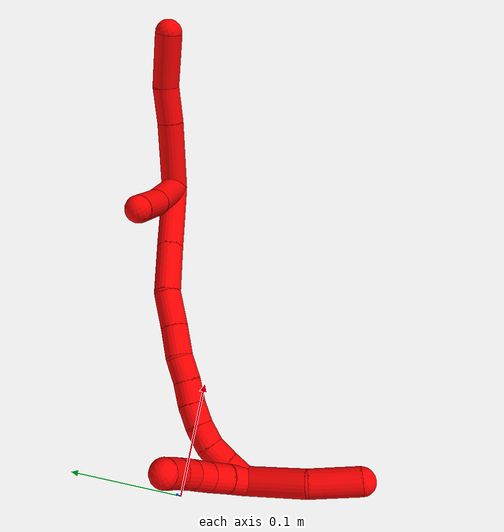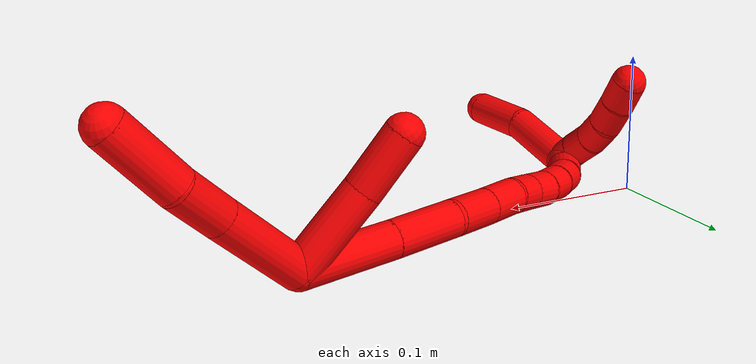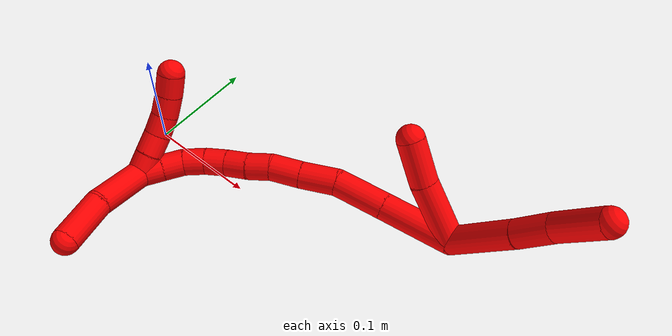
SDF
<sdf version="1.7">
 <world name="default">
  <model name="2">
   <static>0</static>
   <link name="2">
    <collision name="collision-cylinder-e_1_2_8">
     <pose>0.013166 -0.00323 0.030228 0.106452 0.40871 0.022082</pose>
     <geometry><cylinder><radius>0.0125</radius><length>0.066257</length></cylinder></geometry>
     <surface>
      <friction><ode><mu>1.16</mu><mu2>1.16</mu2><slip1>0</slip1><slip2>0</slip2></ode></friction>
      <contact><ode><kp>1e+06</kp><kd>1</kd><max_vel>0</max_vel><min_depth>0.001</min_depth></ode></contact>
     </surface>
    </collision>
    <visual name="visual-cylinder-e_1_2_8">
     <pose>0.013166 -0.00323 0.030228 0.106452 0.40871 0.022082</pose>
     <geometry><cylinder><radius>0.0125</radius><length>0.066257</length></cylinder></geometry>
     <material><ambient>1 0 0 1</ambient></material>
    </visual>
    <collision name="collision-cylinder-e_2_8_9">
     <pose>0.032581 -0.007223 0.076449 0.047696 0.372118 0.00898</pose>
     <geometry><cylinder><radius>0.0125</radius><length>0.034376</length></cylinder></geometry>
     <surface>
      <friction><ode><mu>1.16</mu><mu2>1.16</mu2><slip1>0</slip1><slip2>0</slip2></ode></friction>
      <contact><ode><kp>1e+06</kp><kd>1</kd><max_vel>0</max_vel><min_depth>0.001</min_depth></ode></contact>
     </surface>
    </collision>
    <visual name="visual-cylinder-e_2_8_9">
     <pose>0.032581 -0.007223 0.076449 0.047696 0.372118 0.00898</pose>
     <geometry><cylinder><radius>0.0125</radius><length>0.034376</length></cylinder></geometry>
     <material><ambient>1 0 0 1</ambient></material>
    </visual>
    <collision name="collision-cylinder-e_3_9_6">
     <pose>0.047522 -0.014295 0.114667 0.27657 0.359816 0.050613</pose>
     <geometry><cylinder><radius>0.0125</radius><length>0.049367</length></cylinder></geometry>
     <surface>
      <friction><ode><mu>1.16</mu><mu2>1.16</mu2><slip1>0</slip1><slip2>0</slip2></ode></friction>
      <contact><ode><kp>1e+06</kp><kd>1</kd><max_vel>0</max_vel><min_depth>0.001</min_depth></ode></contact>
     </surface>
    </collision>
    <visual name="visual-cylinder-e_3_9_6">
     <pose>0.047522 -0.014295 0.114667 0.27657 0.359816 0.050613</pose>
     <geometry><cylinder><radius>0.0125</radius><length>0.049367</length></cylinder></geometry>
     <material><ambient>1 0 0 1</ambient></material>
    </visual>
    <collision name="collision-cylinder-e_1_2_10">
     <pose>-0.025716 -0.007606 0.012564 0.544363 -1.05189 -0.321245</pose>
     <geometry><cylinder><radius>0.0125</radius><length>0.059228</length></cylinder></geometry>
     <surface>
      <friction><ode><mu>1.16</mu><mu2>1.16</mu2><slip1>0</slip1><slip2>0</slip2></ode></friction>
      <contact><ode><kp>1e+06</kp><kd>1</kd><max_vel>0</max_vel><min_depth>0.001</min_depth></ode></contact>
     </surface>
    </collision>
    <visual name="visual-cylinder-e_1_2_10">
     <pose>-0.025716 -0.007606 0.012564 0.544363 -1.05189 -0.321245</pose>
     <geometry><cylinder><radius>0.0125</radius><length>0.059228</length></cylinder></geometry>
     <material><ambient>1 0 0 1</ambient></material>
    </visual>
    <collision name="collision-cylinder-e_2_10_5">
     <pose>-0.06826 -0.019382 0.035851 0.370896 -0.971089 -0.197346</pose>
     <geometry><cylinder><radius>0.0125</radius><length>0.040772</length></cylinder></geometry>
     <surface>
      <friction><ode><mu>1.16</mu><mu2>1.16</mu2><slip1>0</slip1><slip2>0</slip2></ode></friction>
      <contact><ode><kp>1e+06</kp><kd>1</kd><max_vel>0</max_vel><min_depth>0.001</min_depth></ode></contact>
     </surface>
    </collision>
    <visual name="visual-cylinder-e_2_10_5">
     <pose>-0.06826 -0.019382 0.035851 0.370896 -0.971089 -0.197346</pose>
     <geometry><cylinder><radius>0.0125</radius><length>0.040772</length></cylinder></geometry>
     <material><ambient>1 0 0 1</ambient></material>
    </visual>
    <collision name="collision-cylinder-e_1_2_11">
     <pose>-0.029015 -0.006712 -0.01274 2.6567 -1.11013 -2.3826</pose>
     <geometry><cylinder><radius>0.0125</radius><length>0.064784</length></cylinder></geometry>
     <surface>
      <friction><ode><mu>1.16</mu><mu2>1.16</mu2><slip1>0</slip1><slip2>0</slip2></ode></friction>
      <contact><ode><kp>1e+06</kp><kd>1</kd><max_vel>0</max_vel><min_depth>0.001</min_depth></ode></contact>
     </surface>
    </collision>
    <visual name="visual-cylinder-e_1_2_11">
     <pose>-0.029015 -0.006712 -0.01274 2.6567 -1.11013 -2.3826</pose>
     <geometry><cylinder><radius>0.0125</radius><length>0.064784</length></cylinder></geometry>
     <material><ambient>1 0 0 1</ambient></material>
    </visual>
    <collision name="collision-cylinder-e_2_11_12">
     <pose>-0.079096 -0.018757 -0.034536 2.60935 -1.10802 -2.31153</pose>
     <geometry><cylinder><radius>0.0125</radius><length>0.047083</length></cylinder></geometry>
     <surface>
      <friction><ode><mu>1.16</mu><mu2>1.16</mu2><slip1>0</slip1><slip2>0</slip2></ode></friction>
      <contact><ode><kp>1e+06</kp><kd>1</kd><max_vel>0</max_vel><min_depth>0.001</min_depth></ode></contact>
     </surface>
    </collision>
    <visual name="visual-cylinder-e_2_11_12">
     <pose>-0.079096 -0.018757 -0.034536 2.60935 -1.10802 -2.31153</pose>
     <geometry><cylinder><radius>0.0125</radius><length>0.047083</length></cylinder></geometry>
     <material><ambient>1 0 0 1</ambient></material>
    </visual>
    <collision name="collision-cylinder-e_3_12_13">
     <pose>-0.11283 -0.030482 -0.052946 2.54216 -0.841193 -1.93243</pose>
     <geometry><cylinder><radius>0.0125</radius><length>0.033991</length></cylinder></geometry>
     <surface>
      <friction><ode><mu>1.16</mu><mu2>1.16</mu2><slip1>0</slip1><slip2>0</slip2></ode></friction>
      <contact><ode><kp>1e+06</kp><kd>1</kd><max_vel>0</max_vel><min_depth>0.001</min_depth></ode></contact>
     </surface>
    </collision>
    <visual name="visual-cylinder-e_3_12_13">
     <pose>-0.11283 -0.030482 -0.052946 2.54216 -0.841193 -1.93243</pose>
     <geometry><cylinder><radius>0.0125</radius><length>0.033991</length></cylinder></geometry>
     <material><ambient>1 0 0 1</ambient></material>
    </visual>
    <collision name="collision-cylinder-e_4_13_14">
     <pose>-0.136572 -0.042109 -0.069441 2.50904 -0.896213 -1.94618</pose>
     <geometry><cylinder><radius>0.0125</radius><length>0.028355</length></cylinder></geometry>
     <surface>
      <friction><ode><mu>1.16</mu><mu2>1.16</mu2><slip1>0</slip1><slip2>0</slip2></ode></friction>
      <contact><ode><kp>1e+06</kp><kd>1</kd><max_vel>0</max_vel><min_depth>0.001</min_depth></ode></contact>
     </surface>
    </collision>
    <visual name="visual-cylinder-e_4_13_14">
     <pose>-0.136572 -0.042109 -0.069441 2.50904 -0.896213 -1.94618</pose>
     <geometry><cylinder><radius>0.0125</radius><length>0.028355</length></cylinder></geometry>
     <material><ambient>1 0 0 1</ambient></material>
    </visual>
    <collision name="collision-cylinder-e_5_14_15">
     <pose>-0.154738 -0.051951 -0.083928 2.58139 -0.685762 -1.78502</pose>
     <geometry><cylinder><radius>0.0125</radius><length>0.022406</length></cylinder></geometry>
     <surface>
      <friction><ode><mu>1.16</mu><mu2>1.16</mu2><slip1>0</slip1><slip2>0</slip2></ode></friction>
      <contact><ode><kp>1e+06</kp><kd>1</kd><max_vel>0</max_vel><min_depth>0.001</min_depth></ode></contact>
     </surface>
    </collision>
    <visual name="visual-cylinder-e_5_14_15">
     <pose>-0.154738 -0.051951 -0.083928 2.58139 -0.685762 -1.78502</pose>
     <geometry><cylinder><radius>0.0125</radius><length>0.022406</length></cylinder></geometry>
     <material><ambient>1 0 0 1</ambient></material>
    </visual>
    <collision name="collision-cylinder-e_6_15_16">
     <pose>-0.169384 -0.060199 -0.097784 2.63168 -0.791437 -2.02601</pose>
     <geometry><cylinder><radius>0.0125</radius><length>0.021229</length></cylinder></geometry>
     <surface>
      <friction><ode><mu>1.16</mu><mu2>1.16</mu2><slip1>0</slip1><slip2>0</slip2></ode></friction>
      <contact><ode><kp>1e+06</kp><kd>1</kd><max_vel>0</max_vel><min_depth>0.001</min_depth></ode></contact>
     </surface>
    </collision>
    <visual name="visual-cylinder-e_6_15_16">
     <pose>-0.169384 -0.060199 -0.097784 2.63168 -0.791437 -2.02601</pose>
     <geometry><cylinder><radius>0.0125</radius><length>0.021229</length></cylinder></geometry>
     <material><ambient>1 0 0 1</ambient></material>
    </visual>
    <collision name="collision-cylinder-e_7_16_17">
     <pose>-0.183646 -0.068667 -0.110167 2.45363 -0.723341 -1.62534</pose>
     <geometry><cylinder><radius>0.0125</radius><length>0.020279</length></cylinder></geometry>
     <surface>
      <friction><ode><mu>1.16</mu><mu2>1.16</mu2><slip1>0</slip1><slip2>0</slip2></ode></friction>
      <contact><ode><kp>1e+06</kp><kd>1</kd><max_vel>0</max_vel><min_depth>0.001</min_depth></ode></contact>
     </surface>
    </collision>
    <visual name="visual-cylinder-e_7_16_17">
     <pose>-0.183646 -0.068667 -0.110167 2.45363 -0.723341 -1.62534</pose>
     <geometry><cylinder><radius>0.0125</radius><length>0.020279</length></cylinder></geometry>
     <material><ambient>1 0 0 1</ambient></material>
    </visual>
    <collision name="collision-cylinder-e_8_17_18">
     <pose>-0.196037 -0.079557 -0.122139 2.35913 -0.583643 -1.25886</pose>
     <geometry><cylinder><radius>0.0125</radius><length>0.020617</length></cylinder></geometry>
     <surface>
      <friction><ode><mu>1.16</mu><mu2>1.16</mu2><slip1>0</slip1><slip2>0</slip2></ode></friction>
      <contact><ode><kp>1e+06</kp><kd>1</kd><max_vel>0</max_vel><min_depth>0.001</min_depth></ode></contact>
     </surface>
    </collision>
    <visual name="visual-cylinder-e_8_17_18">
     <pose>-0.196037 -0.079557 -0.122139 2.35913 -0.583643 -1.25886</pose>
     <geometry><cylinder><radius>0.0125</radius><length>0.020617</length></cylinder></geometry>
     <material><ambient>1 0 0 1</ambient></material>
    </visual>
    <collision name="collision-cylinder-e_9_18_19">
     <pose>-0.205005 -0.093344 -0.13395 2.20758 -0.32976 -0.637504</pose>
     <geometry><cylinder><radius>0.0125</radius><length>0.020303</length></cylinder></geometry>
     <surface>
      <friction><ode><mu>1.16</mu><mu2>1.16</mu2><slip1>0</slip1><slip2>0</slip2></ode></friction>
      <contact><ode><kp>1e+06</kp><kd>1</kd><max_vel>0</max_vel><min_depth>0.001</min_depth></ode></contact>
     </surface>
    </collision>
    <visual name="visual-cylinder-e_9_18_19">
     <pose>-0.205005 -0.093344 -0.13395 2.20758 -0.32976 -0.637504</pose>
     <geometry><cylinder><radius>0.0125</radius><length>0.020303</length></cylinder></geometry>
     <material><ambient>1 0 0 1</ambient></material>
    </visual>
    <collision name="collision-cylinder-e_10_19_1">
     <pose>-0.211388 -0.109522 -0.145016 2.13534 -0.299994 -0.535993</pose>
     <geometry><cylinder><radius>0.0125</radius><length>0.020953</length></cylinder></geometry>
     <surface>
      <friction><ode><mu>1.16</mu><mu2>1.16</mu2><slip1>0</slip1><slip2>0</slip2></ode></friction>
      <contact><ode><kp>1e+06</kp><kd>1</kd><max_vel>0</max_vel><min_depth>0.001</min_depth></ode></contact>
     </surface>
    </collision>
    <visual name="visual-cylinder-e_10_19_1">
     <pose>-0.211388 -0.109522 -0.145016 2.13534 -0.299994 -0.535993</pose>
     <geometry><cylinder><radius>0.0125</radius><length>0.020953</length></cylinder></geometry>
     <material><ambient>1 0 0 1</ambient></material>
    </visual>
    <collision name="collision-cylinder-e_1_1_20">
     <pose>-0.208727 -0.1447 -0.151834 1.62548 0.211895 0.223715</pose>
     <geometry><cylinder><radius>0.0125</radius><length>0.05475</length></cylinder></geometry>
     <surface>
      <friction><ode><mu>1.16</mu><mu2>1.16</mu2><slip1>0</slip1><slip2>0</slip2></ode></friction>
      <contact><ode><kp>1e+06</kp><kd>1</kd><max_vel>0</max_vel><min_depth>0.001</min_depth></ode></contact>
     </surface>
    </collision>
    <visual name="visual-cylinder-e_1_1_20">
     <pose>-0.208727 -0.1447 -0.151834 1.62548 0.211895 0.223715</pose>
     <geometry><cylinder><radius>0.0125</radius><length>0.05475</length></cylinder></geometry>
     <material><ambient>1 0 0 1</ambient></material>
    </visual>
    <collision name="collision-cylinder-e_2_20_4">
     <pose>-0.19419 -0.191749 -0.15795 1.79586 0.398539 0.496371</pose>
     <geometry><cylinder><radius>0.0125</radius><length>0.04525</length></cylinder></geometry>
     <surface>
      <friction><ode><mu>1.16</mu><mu2>1.16</mu2><slip1>0</slip1><slip2>0</slip2></ode></friction>
      <contact><ode><kp>1e+06</kp><kd>1</kd><max_vel>0</max_vel><min_depth>0.001</min_depth></ode></contact>
     </surface>
    </collision>
    <visual name="visual-cylinder-e_2_20_4">
     <pose>-0.19419 -0.191749 -0.15795 1.79586 0.398539 0.496371</pose>
     <geometry><cylinder><radius>0.0125</radius><length>0.04525</length></cylinder></geometry>
     <material><ambient>1 0 0 1</ambient></material>
    </visual>
    <collision name="collision-cylinder-e_1_1_21">
     <pose>-0.219045 -0.113854 -0.142484 -0.481714 -0.473558 0.118403</pose>
     <geometry><cylinder><radius>0.0125</radius><length>0.02</length></cylinder></geometry>
     <surface>
      <friction><ode><mu>1.16</mu><mu2>1.16</mu2><slip1>0</slip1><slip2>0</slip2></ode></friction>
      <contact><ode><kp>1e+06</kp><kd>1</kd><max_vel>0</max_vel><min_depth>0.001</min_depth></ode></contact>
     </surface>
    </collision>
    <visual name="visual-cylinder-e_1_1_21">
     <pose>-0.219045 -0.113854 -0.142484 -0.481714 -0.473558 0.118403</pose>
     <geometry><cylinder><radius>0.0125</radius><length>0.02</length></cylinder></geometry>
     <material><ambient>1 0 0 1</ambient></material>
    </visual>
    <collision name="collision-cylinder-e_2_21_22">
     <pose>-0.228292 -0.105161 -0.127038 -0.543795 -0.487724 0.138518</pose>
     <geometry><cylinder><radius>0.0125</radius><length>0.02</length></cylinder></geometry>
     <surface>
      <friction><ode><mu>1.16</mu><mu2>1.16</mu2><slip1>0</slip1><slip2>0</slip2></ode></friction>
      <contact><ode><kp>1e+06</kp><kd>1</kd><max_vel>0</max_vel><min_depth>0.001</min_depth></ode></contact>
     </surface>
    </collision>
    <visual name="visual-cylinder-e_2_21_22">
     <pose>-0.228292 -0.105161 -0.127038 -0.543795 -0.487724 0.138518</pose>
     <geometry><cylinder><radius>0.0125</radius><length>0.02</length></cylinder></geometry>
     <material><ambient>1 0 0 1</ambient></material>
    </visual>
    <collision name="collision-cylinder-e_3_22_23">
     <pose>-0.23749 -0.097519 -0.111099 -0.351305 -0.468119 0.084583</pose>
     <geometry><cylinder><radius>0.0125</radius><length>0.02</length></cylinder></geometry>
     <surface>
      <friction><ode><mu>1.16</mu><mu2>1.16</mu2><slip1>0</slip1><slip2>0</slip2></ode></friction>
      <contact><ode><kp>1e+06</kp><kd>1</kd><max_vel>0</max_vel><min_depth>0.001</min_depth></ode></contact>
     </surface>
    </collision>
    <visual name="visual-cylinder-e_3_22_23">
     <pose>-0.23749 -0.097519 -0.111099 -0.351305 -0.468119 0.084583</pose>
     <geometry><cylinder><radius>0.0125</radius><length>0.02</length></cylinder></geometry>
     <material><ambient>1 0 0 1</ambient></material>
    </visual>
    <collision name="collision-cylinder-e_4_23_24">
     <pose>-0.246804 -0.093452 -0.094005 -0.113741 -0.500856 0.029124</pose>
     <geometry><cylinder><radius>0.0125</radius><length>0.02</length></cylinder></geometry>
     <surface>
      <friction><ode><mu>1.16</mu><mu2>1.16</mu2><slip1>0</slip1><slip2>0</slip2></ode></friction>
      <contact><ode><kp>1e+06</kp><kd>1</kd><max_vel>0</max_vel><min_depth>0.001</min_depth></ode></contact>
     </surface>
    </collision>
    <visual name="visual-cylinder-e_4_23_24">
     <pose>-0.246804 -0.093452 -0.094005 -0.113741 -0.500856 0.029124</pose>
     <geometry><cylinder><radius>0.0125</radius><length>0.02</length></cylinder></geometry>
     <material><ambient>1 0 0 1</ambient></material>
    </visual>
    <collision name="collision-cylinder-e_5_24_3">
     <pose>-0.256714 -0.0924 -0.076693 -0.006573 -0.536197 0.001806</pose>
     <geometry><cylinder><radius>0.0125</radius><length>0.02</length></cylinder></geometry>
     <surface>
      <friction><ode><mu>1.16</mu><mu2>1.16</mu2><slip1>0</slip1><slip2>0</slip2></ode></friction>
      <contact><ode><kp>1e+06</kp><kd>1</kd><max_vel>0</max_vel><min_depth>0.001</min_depth></ode></contact>
     </surface>
    </collision>
    <visual name="visual-cylinder-e_5_24_3">
     <pose>-0.256714 -0.0924 -0.076693 -0.006573 -0.536197 0.001806</pose>
     <geometry><cylinder><radius>0.0125</radius><length>0.02</length></cylinder></geometry>
     <material><ambient>1 0 0 1</ambient></material>
    </visual>
    <collision name="collision-sphere-3">
     <pose>-0.261823 -0.092344 -0.068097 0 -0 0</pose>
     <geometry><sphere><radius>0.0125</radius></sphere></geometry>
     <surface>
      <friction><ode><mu>1.16</mu><mu2>1.16</mu2><slip1>0</slip1><slip2>0</slip2></ode></friction>
      <contact><ode><kp>1e+06</kp><kd>1</kd><max_vel>0</max_vel><min_depth>0.001</min_depth></ode></contact>
     </surface>
    </collision>
    <visual name="visual-sphere-3">
     <pose>-0.261823 -0.092344 -0.068097 0 -0 0</pose>
     <geometry><sphere><radius>0.0125</radius></sphere></geometry>
     <material><ambient>1 0 0 1</ambient></material>
    </visual>
    <collision name="collision-sphere-24">
     <pose>-0.251605 -0.092457 -0.08529 0 -0 0</pose>
     <geometry><sphere><radius>0.0125</radius></sphere></geometry>
     <surface>
      <friction><ode><mu>1.16</mu><mu2>1.16</mu2><slip1>0</slip1><slip2>0</slip2></ode></friction>
      <contact><ode><kp>1e+06</kp><kd>1</kd><max_vel>0</max_vel><min_depth>0.001</min_depth></ode></contact>
     </surface>
    </collision>
    <visual name="visual-sphere-24">
     <pose>-0.251605 -0.092457 -0.08529 0 -0 0</pose>
     <geometry><sphere><radius>0.0125</radius></sphere></geometry>
     <material><ambient>1 0 0 1</ambient></material>
    </visual>
    <collision name="collision-sphere-23">
     <pose>-0.242002 -0.094448 -0.10272 0 -0 0</pose>
     <geometry><sphere><radius>0.0125</radius></sphere></geometry>
     <surface>
      <friction><ode><mu>1.16</mu><mu2>1.16</mu2><slip1>0</slip1><slip2>0</slip2></ode></friction>
      <contact><ode><kp>1e+06</kp><kd>1</kd><max_vel>0</max_vel><min_depth>0.001</min_depth></ode></contact>
     </surface>
    </collision>
    <visual name="visual-sphere-23">
     <pose>-0.242002 -0.094448 -0.10272 0 -0 0</pose>
     <geometry><sphere><radius>0.0125</radius></sphere></geometry>
     <material><ambient>1 0 0 1</ambient></material>
    </visual>
    <collision name="collision-sphere-22">
     <pose>-0.232978 -0.10059 -0.119478 0 -0 0</pose>
     <geometry><sphere><radius>0.0125</radius></sphere></geometry>
     <surface>
      <friction><ode><mu>1.16</mu><mu2>1.16</mu2><slip1>0</slip1><slip2>0</slip2></ode></friction>
      <contact><ode><kp>1e+06</kp><kd>1</kd><max_vel>0</max_vel><min_depth>0.001</min_depth></ode></contact>
     </surface>
    </collision>
    <visual name="visual-sphere-22">
     <pose>-0.232978 -0.10059 -0.119478 0 -0 0</pose>
     <geometry><sphere><radius>0.0125</radius></sphere></geometry>
     <material><ambient>1 0 0 1</ambient></material>
    </visual>
    <collision name="collision-sphere-21">
     <pose>-0.223605 -0.109731 -0.134597 0 -0 0</pose>
     <geometry><sphere><radius>0.0125</radius></sphere></geometry>
     <surface>
      <friction><ode><mu>1.16</mu><mu2>1.16</mu2><slip1>0</slip1><slip2>0</slip2></ode></friction>
      <contact><ode><kp>1e+06</kp><kd>1</kd><max_vel>0</max_vel><min_depth>0.001</min_depth></ode></contact>
     </surface>
    </collision>
    <visual name="visual-sphere-21">
     <pose>-0.223605 -0.109731 -0.134597 0 -0 0</pose>
     <geometry><sphere><radius>0.0125</radius></sphere></geometry>
     <material><ambient>1 0 0 1</ambient></material>
    </visual>
    <collision name="collision-sphere-4">
     <pose>-0.185409 -0.212075 -0.162603 0 -0 0</pose>
     <geometry><sphere><radius>0.0125</radius></sphere></geometry>
     <surface>
      <friction><ode><mu>1.16</mu><mu2>1.16</mu2><slip1>0</slip1><slip2>0</slip2></ode></friction>
      <contact><ode><kp>1e+06</kp><kd>1</kd><max_vel>0</max_vel><min_depth>0.001</min_depth></ode></contact>
     </surface>
    </collision>
    <visual name="visual-sphere-4">
     <pose>-0.185409 -0.212075 -0.162603 0 -0 0</pose>
     <geometry><sphere><radius>0.0125</radius></sphere></geometry>
     <material><ambient>1 0 0 1</ambient></material>
    </visual>
    <collision name="collision-sphere-20">
     <pose>-0.20297 -0.171423 -0.153296 0 -0 0</pose>
     <geometry><sphere><radius>0.0125</radius></sphere></geometry>
     <surface>
      <friction><ode><mu>1.16</mu><mu2>1.16</mu2><slip1>0</slip1><slip2>0</slip2></ode></friction>
      <contact><ode><kp>1e+06</kp><kd>1</kd><max_vel>0</max_vel><min_depth>0.001</min_depth></ode></contact>
     </surface>
    </collision>
    <visual name="visual-sphere-20">
     <pose>-0.20297 -0.171423 -0.153296 0 -0 0</pose>
     <geometry><sphere><radius>0.0125</radius></sphere></geometry>
     <material><ambient>1 0 0 1</ambient></material>
    </visual>
    <collision name="collision-sphere-5">
     <pose>-0.085089 -0.023552 0.046574 0 -0 0</pose>
     <geometry><sphere><radius>0.0125</radius></sphere></geometry>
     <surface>
      <friction><ode><mu>1.16</mu><mu2>1.16</mu2><slip1>0</slip1><slip2>0</slip2></ode></friction>
      <contact><ode><kp>1e+06</kp><kd>1</kd><max_vel>0</max_vel><min_depth>0.001</min_depth></ode></contact>
     </surface>
    </collision>
    <visual name="visual-sphere-5">
     <pose>-0.085089 -0.023552 0.046574 0 -0 0</pose>
     <geometry><sphere><radius>0.0125</radius></sphere></geometry>
     <material><ambient>1 0 0 1</ambient></material>
    </visual>
    <collision name="collision-sphere-10">
     <pose>-0.051431 -0.015211 0.025127 0 -0 0</pose>
     <geometry><sphere><radius>0.0125</radius></sphere></geometry>
     <surface>
      <friction><ode><mu>1.16</mu><mu2>1.16</mu2><slip1>0</slip1><slip2>0</slip2></ode></friction>
      <contact><ode><kp>1e+06</kp><kd>1</kd><max_vel>0</max_vel><min_depth>0.001</min_depth></ode></contact>
     </surface>
    </collision>
    <visual name="visual-sphere-10">
     <pose>-0.051431 -0.015211 0.025127 0 -0 0</pose>
     <geometry><sphere><radius>0.0125</radius></sphere></geometry>
     <material><ambient>1 0 0 1</ambient></material>
    </visual>
    <collision name="collision-sphere-6">
     <pose>0.056213 -0.020604 0.136892 0 -0 0</pose>
     <geometry><sphere><radius>0.0125</radius></sphere></geometry>
     <surface>
      <friction><ode><mu>1.16</mu><mu2>1.16</mu2><slip1>0</slip1><slip2>0</slip2></ode></friction>
      <contact><ode><kp>1e+06</kp><kd>1</kd><max_vel>0</max_vel><min_depth>0.001</min_depth></ode></contact>
     </surface>
    </collision>
    <visual name="visual-sphere-6">
     <pose>0.056213 -0.020604 0.136892 0 -0 0</pose>
     <geometry><sphere><radius>0.0125</radius></sphere></geometry>
     <material><ambient>1 0 0 1</ambient></material>
    </visual>
    <collision name="collision-sphere-9">
     <pose>0.038831 -0.007987 0.092442 0 -0 0</pose>
     <geometry><sphere><radius>0.0125</radius></sphere></geometry>
     <surface>
      <friction><ode><mu>1.16</mu><mu2>1.16</mu2><slip1>0</slip1><slip2>0</slip2></ode></friction>
      <contact><ode><kp>1e+06</kp><kd>1</kd><max_vel>0</max_vel><min_depth>0.001</min_depth></ode></contact>
     </surface>
    </collision>
    <visual name="visual-sphere-9">
     <pose>0.038831 -0.007987 0.092442 0 -0 0</pose>
     <geometry><sphere><radius>0.0125</radius></sphere></geometry>
     <material><ambient>1 0 0 1</ambient></material>
    </visual>
    <collision name="collision-sphere-2">
     <geometry><sphere><radius>0.0125</radius></sphere></geometry>
     <surface>
      <friction><ode><mu>1.16</mu><mu2>1.16</mu2><slip1>0</slip1><slip2>0</slip2></ode></friction>
      <contact><ode><kp>1e+06</kp><kd>1</kd><max_vel>0</max_vel><min_depth>0.001</min_depth></ode></contact>
     </surface>
    </collision>
    <visual name="visual-sphere-2">
     <geometry><sphere><radius>0.0125</radius></sphere></geometry>
     <material><ambient>1 0 0 1</ambient></material>
    </visual>
    <collision name="collision-sphere-19">
     <pose>-0.208293 -0.101066 -0.139661 0 -0 0</pose>
     <geometry><sphere><radius>0.0125</radius></sphere></geometry>
     <surface>
      <friction><ode><mu>1.16</mu><mu2>1.16</mu2><slip1>0</slip1><slip2>0</slip2></ode></friction>
      <contact><ode><kp>1e+06</kp><kd>1</kd><max_vel>0</max_vel><min_depth>0.001</min_depth></ode></contact>
     </surface>
    </collision>
    <visual name="visual-sphere-19">
     <pose>-0.208293 -0.101066 -0.139661 0 -0 0</pose>
     <geometry><sphere><radius>0.0125</radius></sphere></geometry>
     <material><ambient>1 0 0 1</ambient></material>
    </visual>
    <collision name="collision-sphere-8">
     <pose>0.026332 -0.00646 0.060455 0 -0 0</pose>
     <geometry><sphere><radius>0.0125</radius></sphere></geometry>
     <surface>
      <friction><ode><mu>1.16</mu><mu2>1.16</mu2><slip1>0</slip1><slip2>0</slip2></ode></friction>
      <contact><ode><kp>1e+06</kp><kd>1</kd><max_vel>0</max_vel><min_depth>0.001</min_depth></ode></contact>
     </surface>
    </collision>
    <visual name="visual-sphere-8">
     <pose>0.026332 -0.00646 0.060455 0 -0 0</pose>
     <geometry><sphere><radius>0.0125</radius></sphere></geometry>
     <material><ambient>1 0 0 1</ambient></material>
    </visual>
    <collision name="collision-sphere-11">
     <pose>-0.058031 -0.013424 -0.02548 0 -0 0</pose>
     <geometry><sphere><radius>0.0125</radius></sphere></geometry>
     <surface>
      <friction><ode><mu>1.16</mu><mu2>1.16</mu2><slip1>0</slip1><slip2>0</slip2></ode></friction>
      <contact><ode><kp>1e+06</kp><kd>1</kd><max_vel>0</max_vel><min_depth>0.001</min_depth></ode></contact>
     </surface>
    </collision>
    <visual name="visual-sphere-11">
     <pose>-0.058031 -0.013424 -0.02548 0 -0 0</pose>
     <geometry><sphere><radius>0.0125</radius></sphere></geometry>
     <material><ambient>1 0 0 1</ambient></material>
    </visual>
    <collision name="collision-sphere-12">
     <pose>-0.100161 -0.024091 -0.043592 0 -0 0</pose>
     <geometry><sphere><radius>0.0125</radius></sphere></geometry>
     <surface>
      <friction><ode><mu>1.16</mu><mu2>1.16</mu2><slip1>0</slip1><slip2>0</slip2></ode></friction>
      <contact><ode><kp>1e+06</kp><kd>1</kd><max_vel>0</max_vel><min_depth>0.001</min_depth></ode></contact>
     </surface>
    </collision>
    <visual name="visual-sphere-12">
     <pose>-0.100161 -0.024091 -0.043592 0 -0 0</pose>
     <geometry><sphere><radius>0.0125</radius></sphere></geometry>
     <material><ambient>1 0 0 1</ambient></material>
    </visual>
    <collision name="collision-sphere-13">
     <pose>-0.125499 -0.036874 -0.062299 0 -0 0</pose>
     <geometry><sphere><radius>0.0125</radius></sphere></geometry>
     <surface>
      <friction><ode><mu>1.16</mu><mu2>1.16</mu2><slip1>0</slip1><slip2>0</slip2></ode></friction>
      <contact><ode><kp>1e+06</kp><kd>1</kd><max_vel>0</max_vel><min_depth>0.001</min_depth></ode></contact>
     </surface>
    </collision>
    <visual name="visual-sphere-13">
     <pose>-0.125499 -0.036874 -0.062299 0 -0 0</pose>
     <geometry><sphere><radius>0.0125</radius></sphere></geometry>
     <material><ambient>1 0 0 1</ambient></material>
    </visual>
    <collision name="collision-sphere-14">
     <pose>-0.147644 -0.047344 -0.076582 0 -0 0</pose>
     <geometry><sphere><radius>0.0125</radius></sphere></geometry>
     <surface>
      <friction><ode><mu>1.16</mu><mu2>1.16</mu2><slip1>0</slip1><slip2>0</slip2></ode></friction>
      <contact><ode><kp>1e+06</kp><kd>1</kd><max_vel>0</max_vel><min_depth>0.001</min_depth></ode></contact>
     </surface>
    </collision>
    <visual name="visual-sphere-14">
     <pose>-0.147644 -0.047344 -0.076582 0 -0 0</pose>
     <geometry><sphere><radius>0.0125</radius></sphere></geometry>
     <material><ambient>1 0 0 1</ambient></material>
    </visual>
    <collision name="collision-sphere-15">
     <pose>-0.161833 -0.056558 -0.091273 0 -0 0</pose>
     <geometry><sphere><radius>0.0125</radius></sphere></geometry>
     <surface>
      <friction><ode><mu>1.16</mu><mu2>1.16</mu2><slip1>0</slip1><slip2>0</slip2></ode></friction>
      <contact><ode><kp>1e+06</kp><kd>1</kd><max_vel>0</max_vel><min_depth>0.001</min_depth></ode></contact>
     </surface>
    </collision>
    <visual name="visual-sphere-15">
     <pose>-0.161833 -0.056558 -0.091273 0 -0 0</pose>
     <geometry><sphere><radius>0.0125</radius></sphere></geometry>
     <material><ambient>1 0 0 1</ambient></material>
    </visual>
    <collision name="collision-sphere-16">
     <pose>-0.176934 -0.063841 -0.104295 0 -0 0</pose>
     <geometry><sphere><radius>0.0125</radius></sphere></geometry>
     <surface>
      <friction><ode><mu>1.16</mu><mu2>1.16</mu2><slip1>0</slip1><slip2>0</slip2></ode></friction>
      <contact><ode><kp>1e+06</kp><kd>1</kd><max_vel>0</max_vel><min_depth>0.001</min_depth></ode></contact>
     </surface>
    </collision>
    <visual name="visual-sphere-16">
     <pose>-0.176934 -0.063841 -0.104295 0 -0 0</pose>
     <geometry><sphere><radius>0.0125</radius></sphere></geometry>
     <material><ambient>1 0 0 1</ambient></material>
    </visual>
    <collision name="collision-sphere-17">
     <pose>-0.190357 -0.073493 -0.116038 0 -0 0</pose>
     <geometry><sphere><radius>0.0125</radius></sphere></geometry>
     <surface>
      <friction><ode><mu>1.16</mu><mu2>1.16</mu2><slip1>0</slip1><slip2>0</slip2></ode></friction>
      <contact><ode><kp>1e+06</kp><kd>1</kd><max_vel>0</max_vel><min_depth>0.001</min_depth></ode></contact>
     </surface>
    </collision>
    <visual name="visual-sphere-17">
     <pose>-0.190357 -0.073493 -0.116038 0 -0 0</pose>
     <geometry><sphere><radius>0.0125</radius></sphere></geometry>
     <material><ambient>1 0 0 1</ambient></material>
    </visual>
    <collision name="collision-sphere-18">
     <pose>-0.201718 -0.085622 -0.128239 0 -0 0</pose>
     <geometry><sphere><radius>0.0125</radius></sphere></geometry>
     <surface>
      <friction><ode><mu>1.16</mu><mu2>1.16</mu2><slip1>0</slip1><slip2>0</slip2></ode></friction>
      <contact><ode><kp>1e+06</kp><kd>1</kd><max_vel>0</max_vel><min_depth>0.001</min_depth></ode></contact>
     </surface>
    </collision>
    <visual name="visual-sphere-18">
     <pose>-0.201718 -0.085622 -0.128239 0 -0 0</pose>
     <geometry><sphere><radius>0.0125</radius></sphere></geometry>
     <material><ambient>1 0 0 1</ambient></material>
    </visual>
    <collision name="collision-sphere-1">
     <pose>-0.214484 -0.117977 -0.150371 0 -0 0</pose>
     <geometry><sphere><radius>0.0125</radius></sphere></geometry>
     <surface>
      <friction><ode><mu>1.16</mu><mu2>1.16</mu2><slip1>0</slip1><slip2>0</slip2></ode></friction>
      <contact><ode><kp>1e+06</kp><kd>1</kd><max_vel>0</max_vel><min_depth>0.001</min_depth></ode></contact>
     </surface>
    </collision>
    <visual name="visual-sphere-1">
     <pose>-0.214484 -0.117977 -0.150371 0 -0 0</pose>
     <geometry><sphere><radius>0.0125</radius></sphere></geometry>
     <material><ambient>1 0 0 1</ambient></material>
    </visual>
    <inertial>
     <pose>-0.107575 -0.056358 -0.046234 0 -0 0</pose>
     <mass>0.75</mass>
     <inertia><ixx>3.4e-05</ixx><ixy>0</ixy><ixz>0</ixz><iyy>8.1e-05</iyy><iyz>0</iyz><izz>0.000104</izz></inertia>
    </inertial>
   </link>
   <pose>0.283836 0.070073 0.015038 -0.483731 0.336208 -0.212927</pose>
  </model>
 </world>
</sdf>
